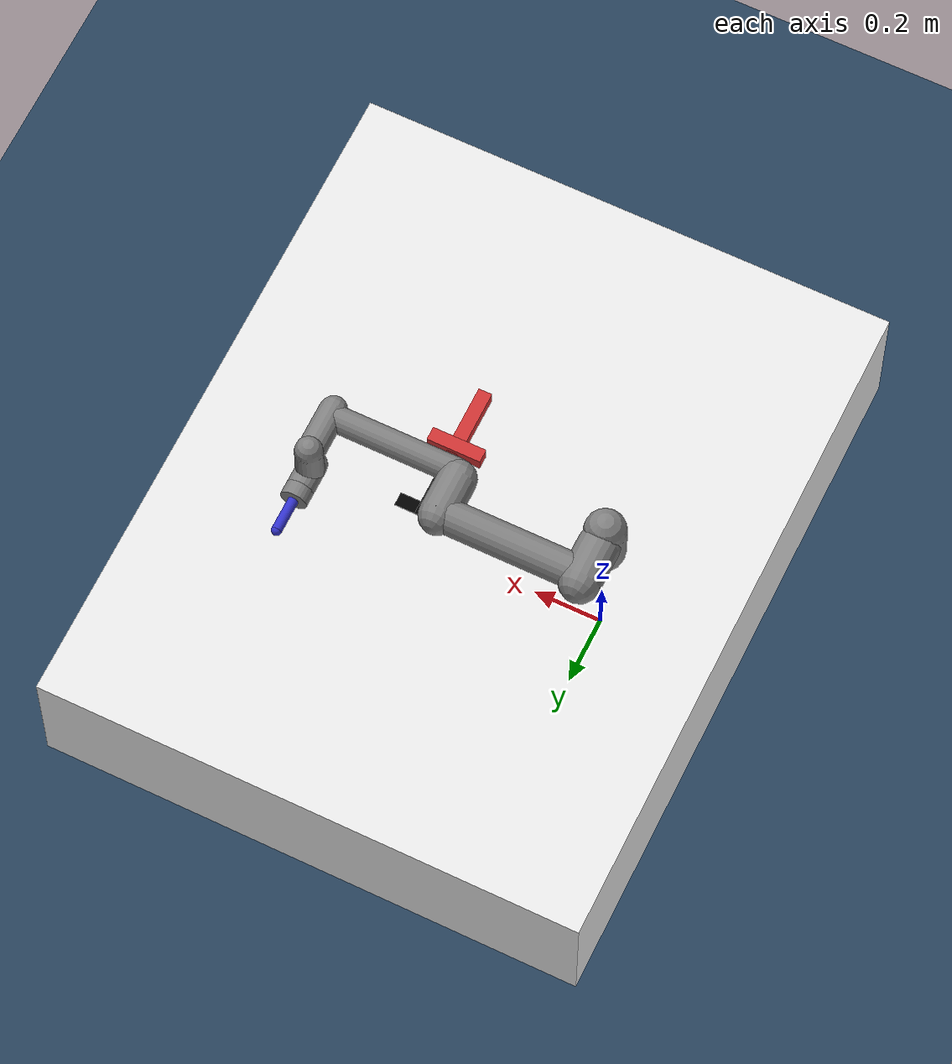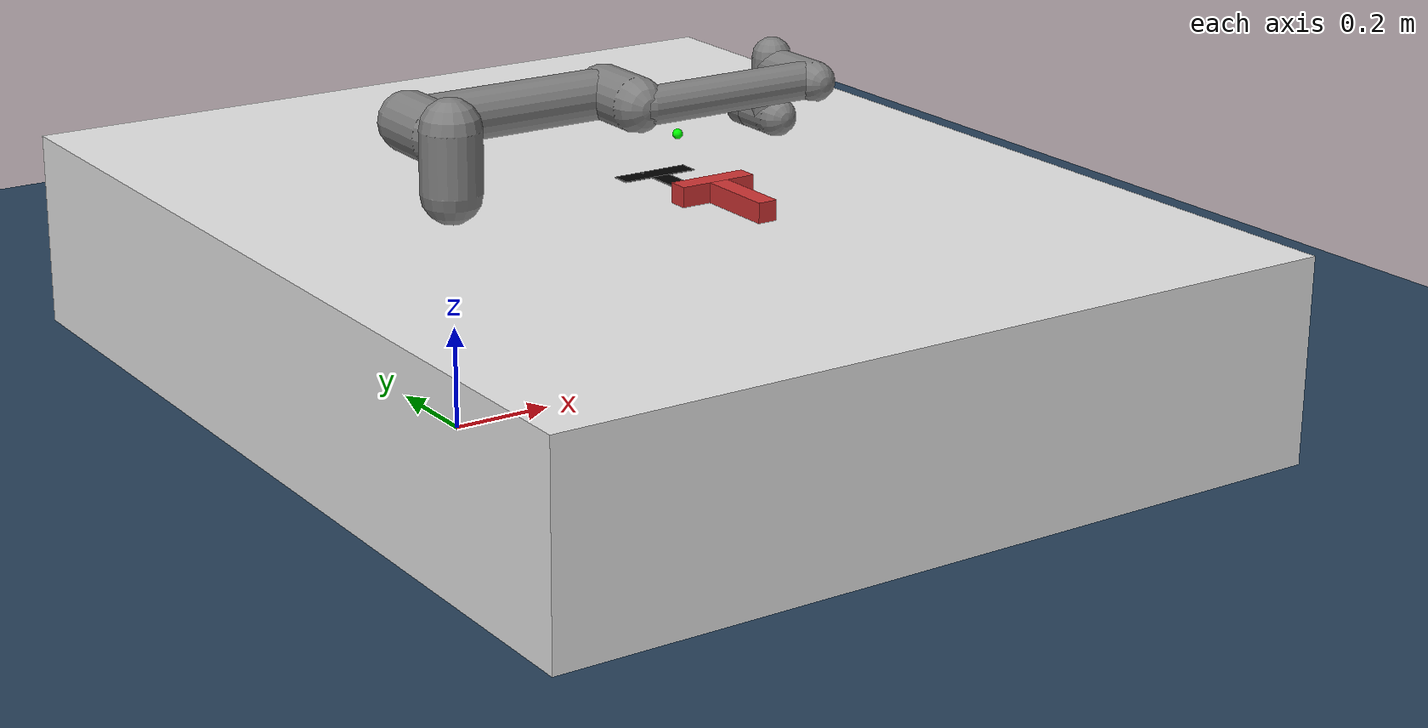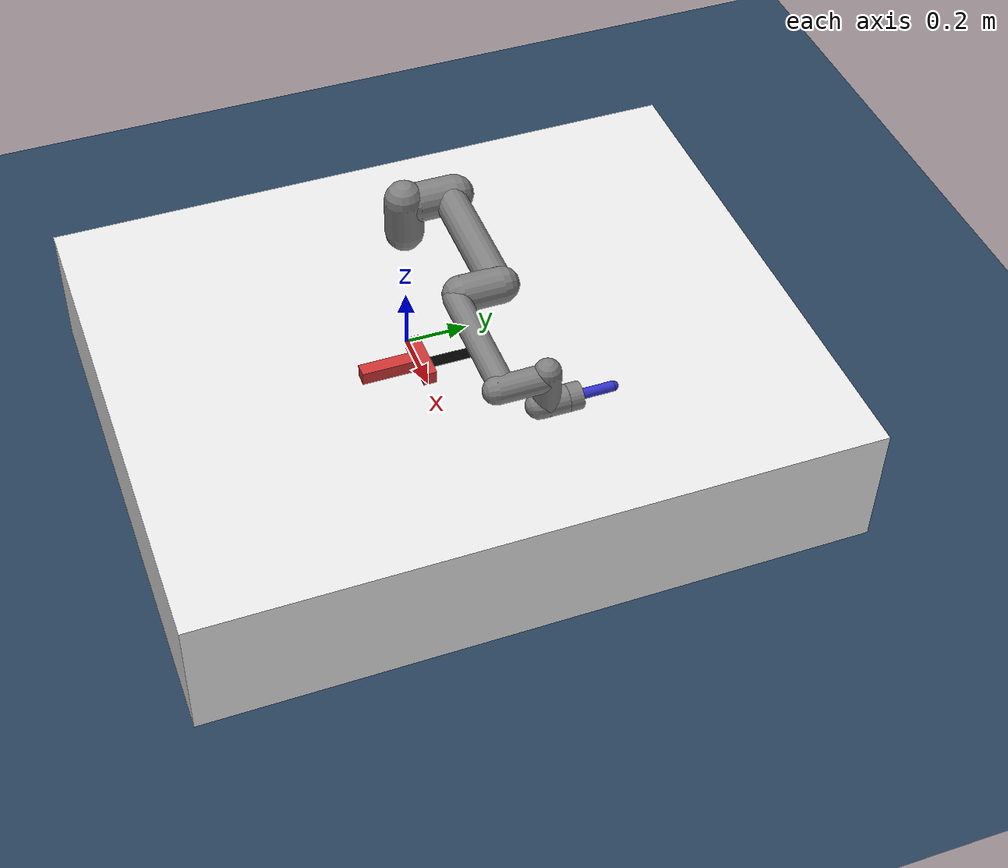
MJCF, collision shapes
<mujoco model="ur5e_push_t">
  <compiler angle="radian" autolimits="true"/>
  <option gravity="0 0 -9.81" timestep="0.002" integrator="implicitfast"/>

  <include file="model/universal_robots_ur5e/ur5e.xml"/>

  <statistic center="0 0 0.4" extent="1.5"/>

  <visual>
    <headlight diffuse="0.6 0.6 0.6" ambient="0.1 0.1 0.1" specular="0 0 0"/>
    <rgba haze="0.15 0.25 0.35 1"/>
    <global azimuth="120" elevation="-20"/>
  </visual>

  <asset>
    <texture type="skybox" builtin="gradient" rgb1="0.3 0.5 0.7" rgb2="0 0 0" width="512" height="3072"/>
    <texture type="2d" name="groundplane" builtin="checker" mark="edge" rgb1="0.2 0.3 0.4" rgb2="0.1 0.2 0.3"
      markrgb="0.8 0.8 0.8" width="300" height="300"/>
    <material name="groundplane" texture="groundplane" texuniform="true" texrepeat="5 5" reflectance="0.2"/>

    <!-- Table texture -->
    <texture name="table_tex" type="2d" builtin="flat" rgb1="0.9 0.9 0.9" width="512" height="512"/>
    <material name="table_mat" texture="table_tex"/>
  </asset>

  <worldbody>
    <light pos="0 0 1.5" dir="0 0 -1" directional="true"/>
    <geom name="floor" size="0 0 0.05" type="plane" material="groundplane"/>

    <!-- Mocap Site for IO control (Must be child of worldbody) -->
    <body name="mocap_target" pos="0.5 0 0.5" mocap="true">
        <geom type="sphere" size="0.01" rgba="0 1 0 0.9" contype="0" conaffinity="0" group="1"/>
    </body>

    <!-- White Table -->
    <body name="table" pos="0.4 0 0.2">
        <geom type="box" size="0.8 1.0 0.2" material="table_mat"
              contype="1" conaffinity="1"
              solref="0.005 1" solimp="0.99 0.999 0.001" friction="0.5 0.1 0.1"/>
    </body>

    <!-- Front Camera -->
    <camera name="front_camera" pos="1.2 0 1.6" xyaxes="0 1 0 -0.866 0 0.5" fovy="60"/>

    <!-- Top-Down Camera (for mouse control mapping) -->
    <camera name="top_camera" pos="0.5 0 2.0" xyaxes="1 0 0 0 1 0" fovy="60"/>

    <!-- Target T-shape area (Visual only, black lines) -->
    <body name="target" pos="0.5 0 0.401">
        <geom type="box" size="0.02 0.1 0.001" pos="0 0 0" rgba="0 0 0 1" contype="0" conaffinity="0"/>
        <geom type="box" size="0.08 0.02 0.001" pos="0 0.08 0" rgba="0 0 0 1" contype="0" conaffinity="0"/>
    </body>

    <!-- T-block to be pushed (Red) -->
    <body name="t_block" pos="0.5 -0.2 0.42">
        <freejoint name="t_block_joint"/>
        <geom type="box" size="0.02 0.1 0.02" pos="0 0 0" rgba="0.8 0.2 0.2 1" mass="1.0"
              friction="0.8 0.1 0.1" contype="1" conaffinity="1"
              solref="0.005 1" solimp="0.99 0.999 0.001"/>
        <geom type="box" size="0.08 0.02 0.02" pos="0 0.08 0" rgba="0.8 0.2 0.2 1" mass="1.0"
              friction="0.8 0.1 0.1" contype="1" conaffinity="1"
              solref="0.005 1" solimp="0.99 0.999 0.001"/>
    </body>

  </worldbody>

  <equality>
    <weld body1="mocap_target" body2="pusher_tool" relpose="0 0 -0.1 1 0 0 0" solref="0.01 1" solimp="0.99 0.999 0.001"/>
  </equality>

</mujoco>

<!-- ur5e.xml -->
<mujoco model="ur5e">
  <compiler angle="radian" autolimits="true"/>

  <option integrator="implicitfast"/>

  <default>
    <default class="ur5e">
      <material specular="0.5" shininess="0.25"/>
      <joint axis="0 1 0" range="-6.28319 6.28319" armature="0.1"/>
      <general gaintype="fixed" biastype="affine" ctrlrange="-6.2831 6.2831" gainprm="2000" biasprm="0 -2000 -400"
        forcerange="-150 150"/>
      <default class="size3">
        <default class="size3_limited">
          <joint range="-3.1415 3.1415"/>
          <general ctrlrange="-3.1415 3.1415"/>
        </default>
      </default>
      <default class="size1">
        <general gainprm="500" biasprm="0 -500 -100" forcerange="-28 28"/>
      </default>
      <default class="visual">
        <geom type="mesh" contype="0" conaffinity="0" group="2"/>
      </default>
      <default class="collision">
        <geom type="capsule" group="3" contype="1" conaffinity="1" solref="0.005 1" solimp="0.99 0.999 0.001"/>
        <default class="eef_collision">
          <geom type="cylinder" contype="1" conaffinity="1" solref="0.005 1" solimp="0.99 0.999 0.001"/>
        </default>
      </default>
      <site size="0.001" rgba="0.5 0.5 0.5 0.3" group="4"/>
    </default>
  </default>

  <asset>
    <material class="ur5e" name="black" rgba="0.033 0.033 0.033 1"/>
    <material class="ur5e" name="jointgray" rgba="0.278 0.278 0.278 1"/>
    <material class="ur5e" name="linkgray" rgba="0.82 0.82 0.82 1"/>
    <material class="ur5e" name="urblue" rgba="0.49 0.678 0.8 1"/>

    <mesh file="assets/base_0.obj"/>
    <mesh file="assets/base_1.obj"/>
    <mesh file="assets/shoulder_0.obj"/>
    <mesh file="assets/shoulder_1.obj"/>
    <mesh file="assets/shoulder_2.obj"/>
    <mesh file="assets/upperarm_0.obj"/>
    <mesh file="assets/upperarm_1.obj"/>
    <mesh file="assets/upperarm_2.obj"/>
    <mesh file="assets/upperarm_3.obj"/>
    <mesh file="assets/forearm_0.obj"/>
    <mesh file="assets/forearm_1.obj"/>
    <mesh file="assets/forearm_2.obj"/>
    <mesh file="assets/forearm_3.obj"/>
    <mesh file="assets/wrist1_0.obj"/>
    <mesh file="assets/wrist1_1.obj"/>
    <mesh file="assets/wrist1_2.obj"/>
    <mesh file="assets/wrist2_0.obj"/>
    <mesh file="assets/wrist2_1.obj"/>
    <mesh file="assets/wrist2_2.obj"/>
    <mesh file="assets/wrist3.obj"/>
  </asset>

  <worldbody>
    <light name="spotlight" mode="targetbodycom" target="wrist_2_link" pos="0 -1 2"/>
    <body name="base" pos="0 0 0.4" quat="1 0 0 0" childclass="ur5e">
      <inertial mass="4.0" pos="0 0 0" diaginertia="0.00443333156 0.00443333156 0.0072"/>
      <geom mesh="base_0" material="black" class="visual"/>
      <geom mesh="base_1" material="jointgray" class="visual"/>
      <body name="shoulder_link" pos="0 0 0.163">
        <inertial mass="3.7" pos="0 0 0" diaginertia="0.0102675 0.0102675 0.00666"/>
        <joint name="shoulder_pan_joint" class="size3" axis="0 0 1"/>
        <geom mesh="shoulder_0" material="urblue" class="visual"/>
        <geom mesh="shoulder_1" material="black" class="visual"/>
        <geom mesh="shoulder_2" material="jointgray" class="visual"/>
        <geom class="collision" size="0.06 0.06" pos="0 0 -0.04"/>
        <body name="upper_arm_link" pos="0 0.138 0" quat="1 0 1 0">
          <inertial mass="8.393" pos="0 0 0.2125" diaginertia="0.133886 0.133886 0.0151074"/>
          <joint name="shoulder_lift_joint" class="size3"/>
          <geom mesh="upperarm_0" material="linkgray" class="visual"/>
          <geom mesh="upperarm_1" material="black" class="visual"/>
          <geom mesh="upperarm_2" material="jointgray" class="visual"/>
          <geom mesh="upperarm_3" material="urblue" class="visual"/>
          <geom class="collision" pos="0 -0.04 0" quat="1 1 0 0" size="0.06 0.06"/>
          <geom class="collision" size="0.05 0.2" pos="0 0 0.2"/>
          <body name="forearm_link" pos="0 -0.131 0.425">
            <inertial mass="2.275" pos="0 0 0.196" diaginertia="0.0311796 0.0311796 0.004095"/>
            <joint name="elbow_joint" class="size3_limited"/>
            <geom mesh="forearm_0" material="urblue" class="visual"/>
            <geom mesh="forearm_1" material="linkgray" class="visual"/>
            <geom mesh="forearm_2" material="black" class="visual"/>
            <geom mesh="forearm_3" material="jointgray" class="visual"/>
            <geom class="collision" pos="0 0.08 0" quat="1 1 0 0" size="0.055 0.06"/>
            <geom class="collision" size="0.038 0.19" pos="0 0 0.2"/>
            <body name="wrist_1_link" pos="0 0 0.392" quat="1 0 1 0">
              <inertial mass="1.219" pos="0 0.127 0" diaginertia="0.0025599 0.0025599 0.0021942"/>
              <joint name="wrist_1_joint" class="size1"/>
              <geom mesh="wrist1_0" material="black" class="visual"/>
              <geom mesh="wrist1_1" material="urblue" class="visual"/>
              <geom mesh="wrist1_2" material="jointgray" class="visual"/>
              <geom class="collision" pos="0 0.05 0" quat="1 1 0 0" size="0.04 0.07"/>
              <body name="wrist_2_link" pos="0 0.127 0">
                <inertial mass="1.219" pos="0 0 0.1" diaginertia="0.0025599 0.0025599 0.0021942"/>
                <joint name="wrist_2_joint" axis="0 0 1" class="size1"/>
                <geom mesh="wrist2_0" material="black" class="visual"/>
                <geom mesh="wrist2_1" material="urblue" class="visual"/>
                <geom mesh="wrist2_2" material="jointgray" class="visual"/>
                <geom class="collision" size="0.04 0.06" pos="0 0 0.04"/>
                <geom class="collision" pos="0 0.02 0.1" quat="1 1 0 0" size="0.04 0.04"/>
                <body name="wrist_3_link" pos="0 0 0.1">
                  <inertial mass="0.1889" pos="0 0.0771683 0" quat="1 0 0 1"
                    diaginertia="0.000132134 9.90863e-05 9.90863e-05"/>
                  <joint name="wrist_3_joint" class="size1"/>
                  <geom material="linkgray" mesh="wrist3" class="visual"/>
                  <geom class="eef_collision" pos="0 0.08 0" quat="1 1 0 0" size="0.04 0.02"/>
                  <!-- Wrist Camera -->
                  <camera name="wrist_camera" pos="0 0.05 0.05" xyaxes="1 0 0 0 0 1" fovy="60"/>
                  <!-- Pusher Tool (Cylinder base attached to end effector) -->
                  <body name="pusher_tool" pos="0 0.1 0" quat="1 -1 0 0">
                    <geom name="pusher_base" type="cylinder" size="0.015 0.05" pos="0 0 0.05" rgba="0.2 0.2 0.8 1" mass="0.5" contype="1" conaffinity="1" solref="0.005 1" solimp="0.99 0.999 0.001" friction="1 0.1 0.1"/>
                    <geom name="pusher_tip" type="sphere" size="0.015" pos="0 0 0.1" rgba="0.2 0.2 0.8 1" mass="0.1" contype="1" conaffinity="1" solref="0.005 1" solimp="0.99 0.999 0.001" friction="1 0.1 0.1"/>
                    <site name="attachment_site" pos="0 0 0.1"/>
                  </body>

                </body>
              </body>
            </body>
          </body>
        </body>
      </body>
    </body>
  </worldbody>

  <actuator>
    <general class="size3" name="shoulder_pan" joint="shoulder_pan_joint"/>
    <general class="size3" name="shoulder_lift" joint="shoulder_lift_joint"/>
    <general class="size3_limited" name="elbow" joint="elbow_joint"/>
    <general class="size1" name="wrist_1" joint="wrist_1_joint"/>
    <general class="size1" name="wrist_2" joint="wrist_2_joint"/>
    <general class="size1" name="wrist_3" joint="wrist_3_joint"/>
  </actuator>

  <keyframe>
    <key name="home" qpos="-1.5708 -1.5708 1.5708 -1.5708 -1.5708 0" ctrl="-1.5708 -1.5708 1.5708 -1.5708 -1.5708 0"/>
  </keyframe>
</mujoco>
